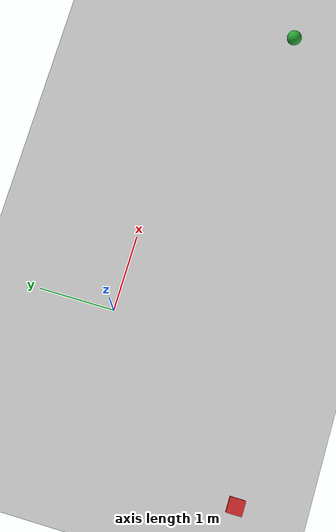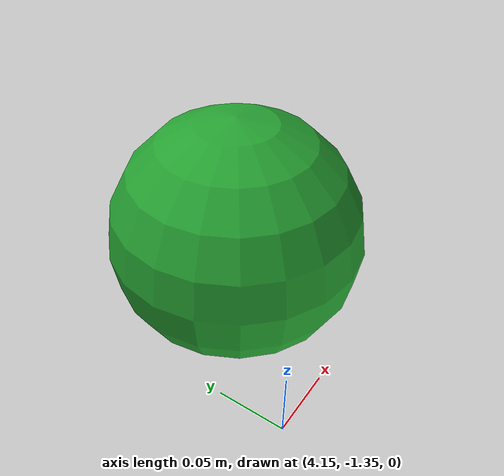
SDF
<sdf version="1.7">
 <world name="default">
  <light name="sun" type="directional">
   <pose>0 0 10 0 -0 0</pose>
   <diffuse>0.8 0.8 0.8 1</diffuse>
   <specular>0.2 0.2 0.2 1</specular>
   <attenuation>
    <range>1000</range>
    <constant>0.9</constant>
    <linear>0.01</linear>
    <quadratic>0.001</quadratic>
   </attenuation>
   <direction>-0.5 0.1 -0.9</direction>
   <spot><inner_angle>0</inner_angle><outer_angle>0</outer_angle><falloff>0</falloff></spot>
  </light>
  <model name="ground_plane">
   <static>1</static>
   <link name="link">
    <collision name="collision">
     <geometry><plane><normal>0 0 1</normal><size>100 100</size></plane></geometry>
     <surface><friction><ode><mu>100</mu><mu2>50</mu2></ode></friction></surface>
    </collision>
    <visual name="visual">
     <cast_shadows>0</cast_shadows>
     <geometry><plane><normal>0 0 1</normal><size>100 100</size></plane></geometry>
     <material>
      <script><uri>file://media/materials/scripts/gazebo.material</uri><name>Gazebo/Grey</name></script>
     </material>
    </visual>
   </link>
  </model>
  <gravity>0 0 -9.8</gravity>
  <magnetic_field>6e-06 2.3e-05 -4.2e-05</magnetic_field>
  <atmosphere type="adiabatic"/>
  <physics type="ode">
   <max_step_size>0.001</max_step_size>
   <real_time_factor>1</real_time_factor>
   <real_time_update_rate>1000</real_time_update_rate>
   <solver><type>quick</type><iters>200</iters><sor>1.3</sor></solver>
   <constraints><cfm>0.0</cfm><erp>0.2</erp></constraints>
  </physics>
  <scene><ambient>0.4 0.4 0.4 1</ambient><background>0.7 0.7 0.7 1</background><shadows>1</shadows></scene>
  <audio><device>default</device></audio>
  <spherical_coordinates>
   <surface_model>EARTH_WGS84</surface_model>
   <latitude_deg>0</latitude_deg>
   <longitude_deg>0</longitude_deg>
   <elevation>0</elevation>
   <heading_deg>0</heading_deg>
  </spherical_coordinates>
  <model name="red_ball">
   <link name="link_0">
    <inertial>
     <mass>0.1</mass>
     <inertia><ixx>0.01</ixx><ixy>0</ixy><ixz>0</ixz><iyy>0.01</iyy><iyz>0</iyz><izz>0.01</izz></inertia>
     <pose>3 0.3 0 0 -0 0</pose>
    </inertial>
    <pose>3 0.3 0 0 -0 0</pose>
    <visual name="visual">
     <pose>3 0.3 -0.45 0 -0 0</pose>
     <geometry><sphere><radius>0.1</radius></sphere></geometry>
     <material>
      <lighting>1</lighting>
      <script><uri>file://media/materials/scripts/gazebo.material</uri><name>Gazebo/Green</name></script>
      <shader type="pixel"><normal_map>__default__</normal_map></shader>
      <ambient>0 1 0 1</ambient>
      <diffuse>0 1 0 1</diffuse>
      <specular>0.01 0.01 0.01 1</specular>
      <emissive>0 0 0 1</emissive>
     </material>
    </visual>
    <collision name="collision">
     <pose>3 0.3 -0.45 0 -0 0</pose>
     <geometry><sphere><radius>0.1</radius></sphere></geometry>
     <surface>
      <friction>
       <ode><mu>1</mu><mu2>1</mu2><fdir1>0 0 0</fdir1><slip1>0</slip1><slip2>0</slip2></ode>
       <torsional>
        <coefficient>1</coefficient>
        <patch_radius>0</patch_radius>
        <surface_radius>0</surface_radius>
        <use_patch_radius>1</use_patch_radius>
        <ode><slip>0</slip></ode>
       </torsional>
      </friction>
      <bounce><restitution_coefficient>0</restitution_coefficient><threshold>1e+06</threshold></bounce>
      <contact>
       <collide_without_contact>0</collide_without_contact>
       <collide_without_contact_bitmask>1</collide_without_contact_bitmask>
       <collide_bitmask>1</collide_bitmask>
       <ode>
        <soft_cfm>0</soft_cfm>
        <soft_erp>0.2</soft_erp>
        <kp>1e+13</kp>
        <kd>1</kd>
        <max_vel>0.01</max_vel>
        <min_depth>0</min_depth>
       </ode>
       <bullet>
        <split_impulse>1</split_impulse>
        <split_impulse_penetration_threshold>-0.01</split_impulse_penetration_threshold>
        <soft_cfm>0</soft_cfm>
        <soft_erp>0.2</soft_erp>
        <kp>1e+13</kp>
        <kd>1</kd>
       </bullet>
      </contact>
     </surface>
    </collision>
   </link>
   <static>0</static>
   <pose>-1.7482 -1.84378 0.5 0 -0 0</pose>
  </model>
  <model name="green_cube_0">
   <link name="link_0">
    <inertial>
     <mass>0.1</mass>
     <inertia>
      <ixx>0.0166667</ixx>
      <ixy>0</ixy>
      <ixz>0</ixz>
      <iyy>0.0166667</iyy>
      <iyz>0</iyz>
      <izz>0.0166667</izz>
     </inertia>
     <pose>-1.5 -0.2 0 0 -0 0</pose>
    </inertial>
    <pose>-1.5 -0.2 0 0 -0 0</pose>
    <visual name="visual">
     <pose>-1.5 -0.2 -0.45 0 -0 0</pose>
     <geometry><box><size>0.2 0.2 0.2</size></box></geometry>
     <material>
      <lighting>1</lighting>
      <script><uri>file://media/materials/scripts/gazebo.material</uri><name>Gazebo/Red</name></script>
      <shader type="pixel"><normal_map>__default__</normal_map></shader>
      <ambient>1 0 0 1</ambient>
      <diffuse>1 0 0 1</diffuse>
      <specular>0.01 0.01 0.01 1</specular>
      <emissive>0 0 0 1</emissive>
     </material>
    </visual>
    <collision name="collision">
     <pose>-1.5 -0.2 -0.45 0 -0 0</pose>
     <geometry><box><size>0.2 0.2 0.2</size></box></geometry>
     <surface>
      <friction>
       <ode><mu>1</mu><mu2>1</mu2><fdir1>0 0 0</fdir1><slip1>0</slip1><slip2>0</slip2></ode>
       <torsional>
        <coefficient>1</coefficient>
        <patch_radius>0</patch_radius>
        <surface_radius>0</surface_radius>
        <use_patch_radius>1</use_patch_radius>
        <ode><slip>0</slip></ode>
       </torsional>
      </friction>
      <bounce><restitution_coefficient>0</restitution_coefficient><threshold>1e+06</threshold></bounce>
      <contact>
       <collide_without_contact>0</collide_without_contact>
       <collide_without_contact_bitmask>1</collide_without_contact_bitmask>
       <collide_bitmask>1</collide_bitmask>
       <ode>
        <soft_cfm>0</soft_cfm>
        <soft_erp>0.2</soft_erp>
        <kp>1e+13</kp>
        <kd>1</kd>
        <max_vel>0.01</max_vel>
        <min_depth>0</min_depth>
       </ode>
       <bullet>
        <split_impulse>1</split_impulse>
        <split_impulse_penetration_threshold>-0.01</split_impulse_penetration_threshold>
        <soft_cfm>0</soft_cfm>
        <soft_erp>0.2</soft_erp>
        <kp>1e+13</kp>
        <kd>1</kd>
       </bullet>
      </contact>
     </surface>
    </collision>
   </link>
   <static>0</static>
   <pose>1.09032 -1.763 0.5 0 -0 0</pose>
  </model>
 </world>
</sdf>
